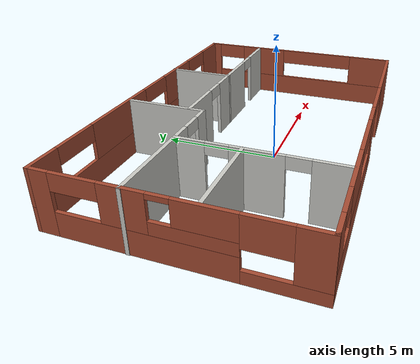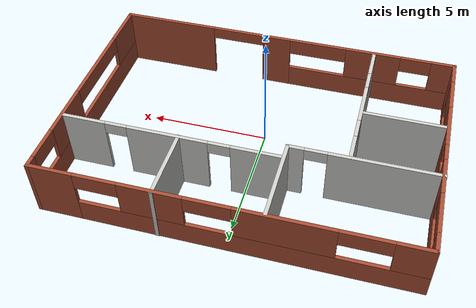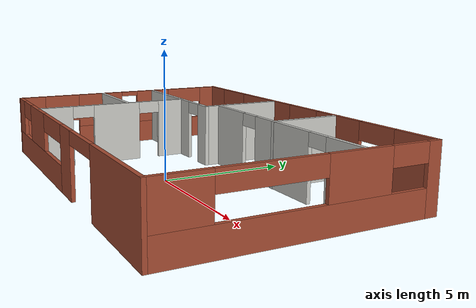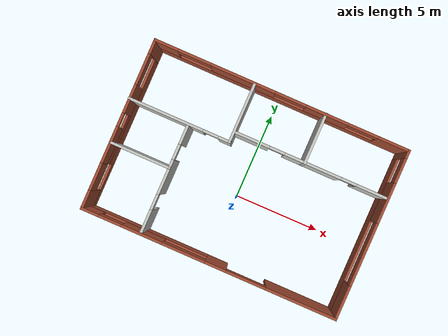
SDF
<?xml version='1.0'?>
<sdf version='1.7'>
  <model name='MyrobotHome'>
    <pose>0.063334 1.05672 0 0 -0 0</pose>
    <link name='Wall_12'>
      <pose>0.011552 -4.93661 0 0 -0 3.14159</pose>
      <visual name='Wall_12_Visual_0'>
        <pose>-5.40953 0 1.25 0 -0 0</pose>
        <geometry>
          <box>
            <size>4.18094 0.15 2.5</size>
          </box>
        </geometry>
        <material>
          <script>
            <uri>file://media/materials/scripts/gazebo.material</uri>
            <name>Gazebo/Bricks</name>
          </script>
          <ambient>1 1 1 1</ambient>
        </material>
        <meta>
          <layer>0</layer>
        </meta>
      </visual>
      <collision name='Wall_12_Collision_0'>
        <geometry>
          <box>
            <size>4.18094 0.15 2.5</size>
          </box>
        </geometry>
        <pose>-5.40953 0 1.25 0 -0 0</pose>
      </collision>
      <visual name='Wall_12_Visual_1'>
        <pose>-0.385262 0 1.25 0 -0 0</pose>
        <geometry>
          <box>
            <size>1.2517 0.15 2.5</size>
          </box>
        </geometry>
        <material>
          <script>
            <uri>file://media/materials/scripts/gazebo.material</uri>
            <name>Gazebo/Bricks</name>
          </script>
          <ambient>1 1 1 1</ambient>
        </material>
        <meta>
          <layer>0</layer>
        </meta>
      </visual>
      <collision name='Wall_12_Collision_1'>
        <geometry>
          <box>
            <size>1.2517 0.15 2.5</size>
          </box>
        </geometry>
        <pose>-0.385262 0 1.25 0 -0 0</pose>
      </collision>
      <visual name='Wall_12_Visual_2'>
        <pose>3.87029 0 0.5 0 -0 0</pose>
        <geometry>
          <box>
            <size>7.25941 0.15 1</size>
          </box>
        </geometry>
        <material>
          <script>
            <uri>file://media/materials/scripts/gazebo.material</uri>
            <name>Gazebo/Bricks</name>
          </script>
          <ambient>1 1 1 1</ambient>
        </material>
        <meta>
          <layer>0</layer>
        </meta>
      </visual>
      <collision name='Wall_12_Collision_2'>
        <geometry>
          <box>
            <size>7.25941 0.15 1</size>
          </box>
        </geometry>
        <pose>3.87029 0 0.5 0 -0 0</pose>
      </collision>
      <visual name='Wall_12_Visual_3'>
        <pose>3.93946 0 1.75 0 -0 0</pose>
        <geometry>
          <box>
            <size>2.37775 0.15 1.5</size>
          </box>
        </geometry>
        <material>
          <script>
            <uri>file://media/materials/scripts/gazebo.material</uri>
            <name>Gazebo/Bricks</name>
          </script>
          <ambient>1 1 1 1</ambient>
        </material>
        <meta>
          <layer>0</layer>
        </meta>
      </visual>
      <collision name='Wall_12_Collision_3'>
        <geometry>
          <box>
            <size>2.37775 0.15 1.5</size>
          </box>
        </geometry>
        <pose>3.93946 0 1.75 0 -0 0</pose>
      </collision>
      <visual name='Wall_12_Visual_4'>
        <pose>6.97567 0 1.75 0 -0 0</pose>
        <geometry>
          <box>
            <size>1.04867 0.15 1.5</size>
          </box>
        </geometry>
        <material>
          <script>
            <uri>file://media/materials/scripts/gazebo.material</uri>
            <name>Gazebo/Bricks</name>
          </script>
          <ambient>1 1 1 1</ambient>
        </material>
        <meta>
          <layer>0</layer>
        </meta>
      </visual>
      <collision name='Wall_12_Collision_4'>
        <geometry>
          <box>
            <size>1.04867 0.15 1.5</size>
          </box>
        </geometry>
        <pose>6.97567 0 1.75 0 -0 0</pose>
      </collision>
      <visual name='Wall_12_Visual_5'>
        <pose>1.49559 0 2.15 0 -0 0</pose>
        <geometry>
          <box>
            <size>2.51 0.15 0.7</size>
          </box>
        </geometry>
        <material>
          <script>
            <uri>file://media/materials/scripts/gazebo.material</uri>
            <name>Gazebo/Bricks</name>
          </script>
          <ambient>1 1 1 1</ambient>
        </material>
        <meta>
          <layer>0</layer>
        </meta>
      </visual>
      <collision name='Wall_12_Collision_5'>
        <geometry>
          <box>
            <size>2.51 0.15 0.7</size>
          </box>
        </geometry>
        <pose>1.49559 0 2.15 0 -0 0</pose>
      </collision>
      <visual name='Wall_12_Visual_6'>
        <pose>5.78983 0 2.15 0 -0 0</pose>
        <geometry>
          <box>
            <size>1.323 0.15 0.7</size>
          </box>
        </geometry>
        <material>
          <script>
            <uri>file://media/materials/scripts/gazebo.material</uri>
            <name>Gazebo/Bricks</name>
          </script>
          <ambient>1 1 1 1</ambient>
        </material>
        <meta>
          <layer>0</layer>
        </meta>
      </visual>
      <collision name='Wall_12_Collision_6'>
        <geometry>
          <box>
            <size>1.323 0.15 0.7</size>
          </box>
        </geometry>
        <pose>5.78983 0 2.15 0 -0 0</pose>
      </collision>
      <visual name='Wall_12_Visual_7'>
        <pose>-2.16508 0 2.25 0 -0 0</pose>
        <geometry>
          <box>
            <size>2.30795 0.15 0.5</size>
          </box>
        </geometry>
        <material>
          <script>
            <uri>file://media/materials/scripts/gazebo.material</uri>
            <name>Gazebo/Bricks</name>
          </script>
          <ambient>1 1 1 1</ambient>
        </material>
        <meta>
          <layer>0</layer>
        </meta>
      </visual>
      <collision name='Wall_12_Collision_7'>
        <geometry>
          <box>
            <size>2.30795 0.15 0.5</size>
          </box>
        </geometry>
        <pose>-2.16508 0 2.25 0 -0 0</pose>
      </collision>
    </link>
    <link name='Wall_14'>
      <pose>7.43655 -0.011605 0 0 -0 -1.5708</pose>
      <visual name='Wall_14_Visual_0'>
        <pose>-4.74176 0 1.25 0 -0 0</pose>
        <geometry>
          <box>
            <size>0.516491 0.15 2.5</size>
          </box>
        </geometry>
        <material>
          <script>
            <uri>file://media/materials/scripts/gazebo.material</uri>
            <name>Gazebo/Bricks</name>
          </script>
          <ambient>1 1 1 1</ambient>
        </material>
        <meta>
          <layer>0</layer>
        </meta>
      </visual>
      <collision name='Wall_14_Collision_0'>
        <geometry>
          <box>
            <size>0.516491 0.15 2.5</size>
          </box>
        </geometry>
        <pose>-4.74176 0 1.25 0 -0 0</pose>
      </collision>
      <visual name='Wall_14_Visual_1'>
        <pose>0.258245 0 0.5 0 -0 0</pose>
        <geometry>
          <box>
            <size>9.48351 0.15 1</size>
          </box>
        </geometry>
        <material>
          <script>
            <uri>file://media/materials/scripts/gazebo.material</uri>
            <name>Gazebo/Bricks</name>
          </script>
          <ambient>1 1 1 1</ambient>
        </material>
        <meta>
          <layer>0</layer>
        </meta>
      </visual>
      <collision name='Wall_14_Collision_1'>
        <geometry>
          <box>
            <size>9.48351 0.15 1</size>
          </box>
        </geometry>
        <pose>0.258245 0 0.5 0 -0 0</pose>
      </collision>
      <visual name='Wall_14_Visual_2'>
        <pose>-1.86065 0 1.75 0 -0 0</pose>
        <geometry>
          <box>
            <size>2.35771 0.15 1.5</size>
          </box>
        </geometry>
        <material>
          <script>
            <uri>file://media/materials/scripts/gazebo.material</uri>
            <name>Gazebo/Bricks</name>
          </script>
          <ambient>1 1 1 1</ambient>
        </material>
        <meta>
          <layer>0</layer>
        </meta>
      </visual>
      <collision name='Wall_14_Collision_2'>
        <geometry>
          <box>
            <size>2.35771 0.15 1.5</size>
          </box>
        </geometry>
        <pose>-1.86065 0 1.75 0 -0 0</pose>
      </collision>
      <visual name='Wall_14_Visual_3'>
        <pose>3.9871 0 1.75 0 -0 0</pose>
        <geometry>
          <box>
            <size>2.0258 0.15 1.5</size>
          </box>
        </geometry>
        <material>
          <script>
            <uri>file://media/materials/scripts/gazebo.material</uri>
            <name>Gazebo/Bricks</name>
          </script>
          <ambient>1 1 1 1</ambient>
        </material>
        <meta>
          <layer>0</layer>
        </meta>
      </visual>
      <collision name='Wall_14_Collision_3'>
        <geometry>
          <box>
            <size>2.0258 0.15 1.5</size>
          </box>
        </geometry>
        <pose>3.9871 0 1.75 0 -0 0</pose>
      </collision>
      <visual name='Wall_14_Visual_4'>
        <pose>-3.76151 0 2.15 0 -0 0</pose>
        <geometry>
          <box>
            <size>1.444 0.15 0.7</size>
          </box>
        </geometry>
        <material>
          <script>
            <uri>file://media/materials/scripts/gazebo.material</uri>
            <name>Gazebo/Bricks</name>
          </script>
          <ambient>1 1 1 1</ambient>
        </material>
        <meta>
          <layer>0</layer>
        </meta>
      </visual>
      <collision name='Wall_14_Collision_4'>
        <geometry>
          <box>
            <size>1.444 0.15 0.7</size>
          </box>
        </geometry>
        <pose>-3.76151 0 2.15 0 -0 0</pose>
      </collision>
      <visual name='Wall_14_Visual_5'>
        <pose>1.1462 0 2.15 0 -0 0</pose>
        <geometry>
          <box>
            <size>3.656 0.15 0.7</size>
          </box>
        </geometry>
        <material>
          <script>
            <uri>file://media/materials/scripts/gazebo.material</uri>
            <name>Gazebo/Bricks</name>
          </script>
          <ambient>1 1 1 1</ambient>
        </material>
        <meta>
          <layer>0</layer>
        </meta>
      </visual>
      <collision name='Wall_14_Collision_5'>
        <geometry>
          <box>
            <size>3.656 0.15 0.7</size>
          </box>
        </geometry>
        <pose>1.1462 0 2.15 0 -0 0</pose>
      </collision>
    </link>
    <link name='Wall_17'>
      <collision name='Wall_17_Collision'>
        <geometry>
          <box>
            <size>3.5 0.15 2.5</size>
          </box>
        </geometry>
        <pose>0 0 1.25 0 -0 0</pose>
      </collision>
      <visual name='Wall_17_Visual'>
        <pose>0 0 1.25 0 -0 0</pose>
        <geometry>
          <box>
            <size>3.5 0.15 2.5</size>
          </box>
        </geometry>
        <material>
          <script>
            <uri>file://media/materials/scripts/gazebo.material</uri>
            <name>Gazebo/CeilingTiled</name>
          </script>
          <ambient>1 1 1 1</ambient>
        </material>
        <meta>
          <layer>0</layer>
        </meta>
      </visual>
      <pose>-1.58655 3.16783 0 0 -0 -1.5708</pose>
    </link>
    <link name='Wall_19'>
      <pose>-4.51155 1.49283 0 0 -0 3.14159</pose>
      <visual name='Wall_19_Visual_0'>
        <pose>-2.64038 0 1.25 0 -0 0</pose>
        <geometry>
          <box>
            <size>0.719238 0.15 2.5</size>
          </box>
        </geometry>
        <material>
          <script>
            <uri>file://media/materials/scripts/gazebo.material</uri>
            <name>Gazebo/CeilingTiled</name>
          </script>
          <ambient>1 1 1 1</ambient>
        </material>
        <meta>
          <layer>0</layer>
        </meta>
      </visual>
      <collision name='Wall_19_Collision_0'>
        <geometry>
          <box>
            <size>0.719238 0.15 2.5</size>
          </box>
        </geometry>
        <pose>-2.64038 0 1.25 0 -0 0</pose>
      </collision>
      <visual name='Wall_19_Visual_1'>
        <pose>0.809619 0 1.25 0 -0 0</pose>
        <geometry>
          <box>
            <size>4.38076 0.15 2.5</size>
          </box>
        </geometry>
        <material>
          <script>
            <uri>file://media/materials/scripts/gazebo.material</uri>
            <name>Gazebo/CeilingTiled</name>
          </script>
          <ambient>1 1 1 1</ambient>
        </material>
        <meta>
          <layer>0</layer>
        </meta>
      </visual>
      <collision name='Wall_19_Collision_1'>
        <geometry>
          <box>
            <size>4.38076 0.15 2.5</size>
          </box>
        </geometry>
        <pose>0.809619 0 1.25 0 -0 0</pose>
      </collision>
      <visual name='Wall_19_Visual_2'>
        <pose>-1.83076 0 2.25 0 -0 0</pose>
        <geometry>
          <box>
            <size>0.9 0.15 0.5</size>
          </box>
        </geometry>
        <material>
          <script>
            <uri>file://media/materials/scripts/gazebo.material</uri>
            <name>Gazebo/CeilingTiled</name>
          </script>
          <ambient>1 1 1 1</ambient>
        </material>
        <meta>
          <layer>0</layer>
        </meta>
      </visual>
      <collision name='Wall_19_Collision_2'>
        <geometry>
          <box>
            <size>0.9 0.15 0.5</size>
          </box>
        </geometry>
        <pose>-1.83076 0 2.25 0 -0 0</pose>
      </collision>
    </link>
    <link name='Wall_2'>
      <pose>0.011552 4.9134 0 0 -0 3.14159</pose>
      <visual name='Wall_2_Visual_0'>
        <pose>-6.56615 0 1.25 0 -0 0</pose>
        <geometry>
          <box>
            <size>1.86771 0.15 2.5</size>
          </box>
        </geometry>
        <material>
          <script>
            <uri>file://media/materials/scripts/gazebo.material</uri>
            <name>Gazebo/Bricks</name>
          </script>
          <ambient>1 1 1 1</ambient>
        </material>
        <meta>
          <layer>0</layer>
        </meta>
      </visual>
      <collision name='Wall_2_Collision_0'>
        <geometry>
          <box>
            <size>1.86771 0.15 2.5</size>
          </box>
        </geometry>
        <pose>-6.56615 0 1.25 0 -0 0</pose>
      </collision>
      <visual name='Wall_2_Visual_1'>
        <pose>0.933854 0 0.5 0 -0 0</pose>
        <geometry>
          <box>
            <size>13.1323 0.15 1</size>
          </box>
        </geometry>
        <material>
          <script>
            <uri>file://media/materials/scripts/gazebo.material</uri>
            <name>Gazebo/Bricks</name>
          </script>
          <ambient>1 1 1 1</ambient>
        </material>
        <meta>
          <layer>0</layer>
        </meta>
      </visual>
      <collision name='Wall_2_Collision_1'>
        <geometry>
          <box>
            <size>13.1323 0.15 1</size>
          </box>
        </geometry>
        <pose>0.933854 0 0.5 0 -0 0</pose>
      </collision>
      <visual name='Wall_2_Visual_2'>
        <pose>-2.658 0 1.75 0 -0 0</pose>
        <geometry>
          <box>
            <size>2.49858 0.15 1.5</size>
          </box>
        </geometry>
        <material>
          <script>
            <uri>file://media/materials/scripts/gazebo.material</uri>
            <name>Gazebo/Bricks</name>
          </script>
          <ambient>1 1 1 1</ambient>
        </material>
        <meta>
          <layer>0</layer>
        </meta>
      </visual>
      <collision name='Wall_2_Collision_2'>
        <geometry>
          <box>
            <size>2.49858 0.15 1.5</size>
          </box>
        </geometry>
        <pose>-2.658 0 1.75 0 -0 0</pose>
      </collision>
      <visual name='Wall_2_Visual_3'>
        <pose>2.28018 0 1.75 0 -0 0</pose>
        <geometry>
          <box>
            <size>3.7658 0.15 1.5</size>
          </box>
        </geometry>
        <material>
          <script>
            <uri>file://media/materials/scripts/gazebo.material</uri>
            <name>Gazebo/Bricks</name>
          </script>
          <ambient>1 1 1 1</ambient>
        </material>
        <meta>
          <layer>0</layer>
        </meta>
      </visual>
      <collision name='Wall_2_Collision_3'>
        <geometry>
          <box>
            <size>3.7658 0.15 1.5</size>
          </box>
        </geometry>
        <pose>2.28018 0 1.75 0 -0 0</pose>
      </collision>
      <visual name='Wall_2_Visual_4'>
        <pose>6.79454 0 1.75 0 -0 0</pose>
        <geometry>
          <box>
            <size>1.41091 0.15 1.5</size>
          </box>
        </geometry>
        <material>
          <script>
            <uri>file://media/materials/scripts/gazebo.material</uri>
            <name>Gazebo/Bricks</name>
          </script>
          <ambient>1 1 1 1</ambient>
        </material>
        <meta>
          <layer>0</layer>
        </meta>
      </visual>
      <collision name='Wall_2_Collision_4'>
        <geometry>
          <box>
            <size>1.41091 0.15 1.5</size>
          </box>
        </geometry>
        <pose>6.79454 0 1.75 0 -0 0</pose>
      </collision>
      <visual name='Wall_2_Visual_5'>
        <pose>-4.76979 0 2.15 0 -0 0</pose>
        <geometry>
          <box>
            <size>1.725 0.15 0.7</size>
          </box>
        </geometry>
        <material>
          <script>
            <uri>file://media/materials/scripts/gazebo.material</uri>
            <name>Gazebo/Bricks</name>
          </script>
          <ambient>1 1 1 1</ambient>
        </material>
        <meta>
          <layer>0</layer>
        </meta>
      </visual>
      <collision name='Wall_2_Collision_5'>
        <geometry>
          <box>
            <size>1.725 0.15 0.7</size>
          </box>
        </geometry>
        <pose>-4.76979 0 2.15 0 -0 0</pose>
      </collision>
      <visual name='Wall_2_Visual_6'>
        <pose>-0.505715 0 2.15 0 -0 0</pose>
        <geometry>
          <box>
            <size>1.806 0.15 0.7</size>
          </box>
        </geometry>
        <material>
          <script>
            <uri>file://media/materials/scripts/gazebo.material</uri>
            <name>Gazebo/Bricks</name>
          </script>
          <ambient>1 1 1 1</ambient>
        </material>
        <meta>
          <layer>0</layer>
        </meta>
      </visual>
      <collision name='Wall_2_Collision_6'>
        <geometry>
          <box>
            <size>1.806 0.15 0.7</size>
          </box>
        </geometry>
        <pose>-0.505715 0 2.15 0 -0 0</pose>
      </collision>
      <visual name='Wall_2_Visual_7'>
        <pose>5.12608 0 2.15 0 -0 0</pose>
        <geometry>
          <box>
            <size>1.926 0.15 0.7</size>
          </box>
        </geometry>
        <material>
          <script>
            <uri>file://media/materials/scripts/gazebo.material</uri>
            <name>Gazebo/Bricks</name>
          </script>
          <ambient>1 1 1 1</ambient>
        </material>
        <meta>
          <layer>0</layer>
        </meta>
      </visual>
      <collision name='Wall_2_Collision_7'>
        <geometry>
          <box>
            <size>1.926 0.15 0.7</size>
          </box>
        </geometry>
        <pose>5.12608 0 2.15 0 -0 0</pose>
      </collision>
    </link>
    <link name='Wall_21'>
      <collision name='Wall_21_Collision'>
        <geometry>
          <box>
            <size>3 0.15 2.5</size>
          </box>
        </geometry>
        <pose>0 0 1.25 0 -0 0</pose>
      </collision>
      <visual name='Wall_21_Visual'>
        <pose>0 0 1.25 0 -0 0</pose>
        <geometry>
          <box>
            <size>3 0.15 2.5</size>
          </box>
        </geometry>
        <material>
          <script>
            <uri>file://media/materials/scripts/gazebo.material</uri>
            <name>Gazebo/CeilingTiled</name>
          </script>
          <ambient>1 1 1 1</ambient>
        </material>
        <meta>
          <layer>0</layer>
        </meta>
      </visual>
      <pose>2.56885 3.5116 0 0 -0 -1.5708</pose>
    </link>
    <link name='Wall_24'>
      <pose>2.89068 2.10059 0 0 -0 0</pose>
      <visual name='Wall_24_Visual_0'>
        <pose>-3.45052 0 1.25 0 -0 0</pose>
        <geometry>
          <box>
            <size>2.09897 0.15 2.5</size>
          </box>
        </geometry>
        <material>
          <script>
            <uri>file://media/materials/scripts/gazebo.material</uri>
            <name>Gazebo/CeilingTiled</name>
          </script>
          <ambient>1 1 1 1</ambient>
        </material>
        <meta>
          <layer>0</layer>
        </meta>
      </visual>
      <collision name='Wall_24_Collision_0'>
        <geometry>
          <box>
            <size>2.09897 0.15 2.5</size>
          </box>
        </geometry>
        <pose>-3.45052 0 1.25 0 -0 0</pose>
      </collision>
      <visual name='Wall_24_Visual_1'>
        <pose>0.150838 0 1.25 0 -0 0</pose>
        <geometry>
          <box>
            <size>3.30374 0.15 2.5</size>
          </box>
        </geometry>
        <material>
          <script>
            <uri>file://media/materials/scripts/gazebo.material</uri>
            <name>Gazebo/CeilingTiled</name>
          </script>
          <ambient>1 1 1 1</ambient>
        </material>
        <meta>
          <layer>0</layer>
        </meta>
      </visual>
      <collision name='Wall_24_Collision_1'>
        <geometry>
          <box>
            <size>3.30374 0.15 2.5</size>
          </box>
        </geometry>
        <pose>0.150838 0 1.25 0 -0 0</pose>
      </collision>
      <visual name='Wall_24_Visual_2'>
        <pose>3.60135 0 1.25 0 -0 0</pose>
        <geometry>
          <box>
            <size>1.79729 0.15 2.5</size>
          </box>
        </geometry>
        <material>
          <script>
            <uri>file://media/materials/scripts/gazebo.material</uri>
            <name>Gazebo/CeilingTiled</name>
          </script>
          <ambient>1 1 1 1</ambient>
        </material>
        <meta>
          <layer>0</layer>
        </meta>
      </visual>
      <collision name='Wall_24_Collision_2'>
        <geometry>
          <box>
            <size>1.79729 0.15 2.5</size>
          </box>
        </geometry>
        <pose>3.60135 0 1.25 0 -0 0</pose>
      </collision>
      <visual name='Wall_24_Visual_3'>
        <pose>-1.95103 0 2.25 0 -0 0</pose>
        <geometry>
          <box>
            <size>0.9 0.15 0.5</size>
          </box>
        </geometry>
        <material>
          <script>
            <uri>file://media/materials/scripts/gazebo.material</uri>
            <name>Gazebo/CeilingTiled</name>
          </script>
          <ambient>1 1 1 1</ambient>
        </material>
        <meta>
          <layer>0</layer>
        </meta>
      </visual>
      <collision name='Wall_24_Collision_3'>
        <geometry>
          <box>
            <size>0.9 0.15 0.5</size>
          </box>
        </geometry>
        <pose>-1.95103 0 2.25 0 -0 0</pose>
      </collision>
      <visual name='Wall_24_Visual_4'>
        <pose>2.25271 0 2.25 0 -0 0</pose>
        <geometry>
          <box>
            <size>0.9 0.15 0.5</size>
          </box>
        </geometry>
        <material>
          <script>
            <uri>file://media/materials/scripts/gazebo.material</uri>
            <name>Gazebo/CeilingTiled</name>
          </script>
          <ambient>1 1 1 1</ambient>
        </material>
        <meta>
          <layer>0</layer>
        </meta>
      </visual>
      <collision name='Wall_24_Collision_4'>
        <geometry>
          <box>
            <size>0.9 0.15 0.5</size>
          </box>
        </geometry>
        <pose>2.25271 0 2.25 0 -0 0</pose>
      </collision>
    </link>
    <link name='Wall_3'>
      <pose>-7.41345 -0.011605 0 0 -0 -1.5708</pose>
      <visual name='Wall_3_Visual_0'>
        <pose>-4.56075 0 1.25 0 -0 0</pose>
        <geometry>
          <box>
            <size>0.8785 0.15 2.5</size>
          </box>
        </geometry>
        <material>
          <script>
            <uri>file://media/materials/scripts/gazebo.material</uri>
            <name>Gazebo/Bricks</name>
          </script>
          <ambient>1 1 1 1</ambient>
        </material>
        <meta>
          <layer>0</layer>
        </meta>
      </visual>
      <collision name='Wall_3_Collision_0'>
        <geometry>
          <box>
            <size>0.8785 0.15 2.5</size>
          </box>
        </geometry>
        <pose>-4.56075 0 1.25 0 -0 0</pose>
      </collision>
      <visual name='Wall_3_Visual_1'>
        <pose>-0.923333 0 0.5 0 -0 0</pose>
        <geometry>
          <box>
            <size>6.39633 0.15 1</size>
          </box>
        </geometry>
        <material>
          <script>
            <uri>file://media/materials/scripts/gazebo.material</uri>
            <name>Gazebo/Bricks</name>
          </script>
          <ambient>1 1 1 1</ambient>
        </material>
        <meta>
          <layer>0</layer>
        </meta>
      </visual>
      <collision name='Wall_3_Collision_1'>
        <geometry>
          <box>
            <size>6.39633 0.15 1</size>
          </box>
        </geometry>
        <pose>-0.923333 0 0.5 0 -0 0</pose>
      </collision>
      <visual name='Wall_3_Visual_2'>
        <pose>3.63742 0 0.25 0 -0 0</pose>
        <geometry>
          <box>
            <size>2.72517 0.15 0.5</size>
          </box>
        </geometry>
        <material>
          <script>
            <uri>file://media/materials/scripts/gazebo.material</uri>
            <name>Gazebo/Bricks</name>
          </script>
          <ambient>1 1 1 1</ambient>
        </material>
        <meta>
          <layer>0</layer>
        </meta>
      </visual>
      <collision name='Wall_3_Collision_2'>
        <geometry>
          <box>
            <size>2.72517 0.15 0.5</size>
          </box>
        </geometry>
        <pose>3.63742 0 0.25 0 -0 0</pose>
      </collision>
      <visual name='Wall_3_Visual_3'>
        <pose>4.42963 0 1.5 0 -0 0</pose>
        <geometry>
          <box>
            <size>1.14074 0.15 2</size>
          </box>
        </geometry>
        <material>
          <script>
            <uri>file://media/materials/scripts/gazebo.material</uri>
            <name>Gazebo/Bricks</name>
          </script>
          <ambient>1 1 1 1</ambient>
        </material>
        <meta>
          <layer>0</layer>
        </meta>
      </visual>
      <collision name='Wall_3_Collision_3'>
        <geometry>
          <box>
            <size>1.14074 0.15 2</size>
          </box>
        </geometry>
        <pose>4.42963 0 1.5 0 -0 0</pose>
      </collision>
      <visual name='Wall_3_Visual_4'>
        <pose>-1.49862 0 1.75 0 -0 0</pose>
        <geometry>
          <box>
            <size>1.67375 0.15 1.5</size>
          </box>
        </geometry>
        <material>
          <script>
            <uri>file://media/materials/scripts/gazebo.material</uri>
            <name>Gazebo/Bricks</name>
          </script>
          <ambient>1 1 1 1</ambient>
        </material>
        <meta>
          <layer>0</layer>
        </meta>
      </visual>
      <collision name='Wall_3_Collision_4'>
        <geometry>
          <box>
            <size>1.67375 0.15 1.5</size>
          </box>
        </geometry>
        <pose>-1.49862 0 1.75 0 -0 0</pose>
      </collision>
      <visual name='Wall_3_Visual_5'>
        <pose>0.806543 0 1.25 0 -0 0</pose>
        <geometry>
          <box>
            <size>2.93658 0.15 0.5</size>
          </box>
        </geometry>
        <material>
          <script>
            <uri>file://media/materials/scripts/gazebo.material</uri>
            <name>Gazebo/Bricks</name>
          </script>
          <ambient>1 1 1 1</ambient>
        </material>
        <meta>
          <layer>0</layer>
        </meta>
      </visual>
      <collision name='Wall_3_Collision_5'>
        <geometry>
          <box>
            <size>2.93658 0.15 0.5</size>
          </box>
        </geometry>
        <pose>0.806543 0 1.25 0 -0 0</pose>
      </collision>
      <visual name='Wall_3_Visual_6'>
        <pose>3.06705 0 1.9 0 -0 0</pose>
        <geometry>
          <box>
            <size>1.58443 0.15 1.2</size>
          </box>
        </geometry>
        <material>
          <script>
            <uri>file://media/materials/scripts/gazebo.material</uri>
            <name>Gazebo/Bricks</name>
          </script>
          <ambient>1 1 1 1</ambient>
        </material>
        <meta>
          <layer>0</layer>
        </meta>
      </visual>
      <collision name='Wall_3_Collision_6'>
        <geometry>
          <box>
            <size>1.58443 0.15 1.2</size>
          </box>
        </geometry>
        <pose>3.06705 0 1.9 0 -0 0</pose>
      </collision>
      <visual name='Wall_3_Visual_7'>
        <pose>1.20654 0 2 0 -0 0</pose>
        <geometry>
          <box>
            <size>2.13658 0.15 1</size>
          </box>
        </geometry>
        <material>
          <script>
            <uri>file://media/materials/scripts/gazebo.material</uri>
            <name>Gazebo/Bricks</name>
          </script>
          <ambient>1 1 1 1</ambient>
        </material>
        <meta>
          <layer>0</layer>
        </meta>
      </visual>
      <collision name='Wall_3_Collision_7'>
        <geometry>
          <box>
            <size>2.13658 0.15 1</size>
          </box>
        </geometry>
        <pose>1.20654 0 2 0 -0 0</pose>
      </collision>
      <visual name='Wall_3_Visual_8'>
        <pose>-3.2285 0 2.15 0 -0 0</pose>
        <geometry>
          <box>
            <size>1.786 0.15 0.7</size>
          </box>
        </geometry>
        <material>
          <script>
            <uri>file://media/materials/scripts/gazebo.material</uri>
            <name>Gazebo/Bricks</name>
          </script>
          <ambient>1 1 1 1</ambient>
        </material>
        <meta>
          <layer>0</layer>
        </meta>
      </visual>
      <collision name='Wall_3_Collision_8'>
        <geometry>
          <box>
            <size>1.786 0.15 0.7</size>
          </box>
        </geometry>
        <pose>-3.2285 0 2.15 0 -0 0</pose>
      </collision>
      <visual name='Wall_3_Visual_9'>
        <pose>-0.261748 0 2.4 0 -0 0</pose>
        <geometry>
          <box>
            <size>0.8 0.15 0.2</size>
          </box>
        </geometry>
        <material>
          <script>
            <uri>file://media/materials/scripts/gazebo.material</uri>
            <name>Gazebo/Bricks</name>
          </script>
          <ambient>1 1 1 1</ambient>
        </material>
        <meta>
          <layer>0</layer>
        </meta>
      </visual>
      <collision name='Wall_3_Collision_9'>
        <geometry>
          <box>
            <size>0.8 0.15 0.2</size>
          </box>
        </geometry>
        <pose>-0.261748 0 2.4 0 -0 0</pose>
      </collision>
    </link>
    <link name='Wall_5'>
      <pose>-3.98253 -1.68978 0 0 -0 1.5708</pose>
      <visual name='Wall_5_Visual_0'>
        <pose>-2.53941 0 1.25 0 -0 0</pose>
        <geometry>
          <box>
            <size>1.42119 0.15 2.5</size>
          </box>
        </geometry>
        <material>
          <script>
            <uri>file://media/materials/scripts/gazebo.material</uri>
            <name>Gazebo/CeilingTiled</name>
          </script>
          <ambient>1 1 1 1</ambient>
        </material>
        <meta>
          <layer>0</layer>
        </meta>
      </visual>
      <collision name='Wall_5_Collision_0'>
        <geometry>
          <box>
            <size>1.42119 0.15 2.5</size>
          </box>
        </geometry>
        <pose>-2.53941 0 1.25 0 -0 0</pose>
      </collision>
      <visual name='Wall_5_Visual_1'>
        <pose>0.089477 0 1.25 0 -0 0</pose>
        <geometry>
          <box>
            <size>2.03658 0.15 2.5</size>
          </box>
        </geometry>
        <material>
          <script>
            <uri>file://media/materials/scripts/gazebo.material</uri>
            <name>Gazebo/CeilingTiled</name>
          </script>
          <ambient>1 1 1 1</ambient>
        </material>
        <meta>
          <layer>0</layer>
        </meta>
      </visual>
      <collision name='Wall_5_Collision_1'>
        <geometry>
          <box>
            <size>2.03658 0.15 2.5</size>
          </box>
        </geometry>
        <pose>0.089477 0 1.25 0 -0 0</pose>
      </collision>
      <visual name='Wall_5_Visual_2'>
        <pose>2.62888 0 1.25 0 -0 0</pose>
        <geometry>
          <box>
            <size>1.24223 0.15 2.5</size>
          </box>
        </geometry>
        <material>
          <script>
            <uri>file://media/materials/scripts/gazebo.material</uri>
            <name>Gazebo/CeilingTiled</name>
          </script>
          <ambient>1 1 1 1</ambient>
        </material>
        <meta>
          <layer>0</layer>
        </meta>
      </visual>
      <collision name='Wall_5_Collision_2'>
        <geometry>
          <box>
            <size>1.24223 0.15 2.5</size>
          </box>
        </geometry>
        <pose>2.62888 0 1.25 0 -0 0</pose>
      </collision>
      <visual name='Wall_5_Visual_3'>
        <pose>-1.37881 0 2.25 0 -0 0</pose>
        <geometry>
          <box>
            <size>0.9 0.15 0.5</size>
          </box>
        </geometry>
        <material>
          <script>
            <uri>file://media/materials/scripts/gazebo.material</uri>
            <name>Gazebo/CeilingTiled</name>
          </script>
          <ambient>1 1 1 1</ambient>
        </material>
        <meta>
          <layer>0</layer>
        </meta>
      </visual>
      <collision name='Wall_5_Collision_3'>
        <geometry>
          <box>
            <size>0.9 0.15 0.5</size>
          </box>
        </geometry>
        <pose>-1.37881 0 2.25 0 -0 0</pose>
      </collision>
      <visual name='Wall_5_Visual_4'>
        <pose>1.55777 0 2.25 0 -0 0</pose>
        <geometry>
          <box>
            <size>0.9 0.15 0.5</size>
          </box>
        </geometry>
        <material>
          <script>
            <uri>file://media/materials/scripts/gazebo.material</uri>
            <name>Gazebo/CeilingTiled</name>
          </script>
          <ambient>1 1 1 1</ambient>
        </material>
        <meta>
          <layer>0</layer>
        </meta>
      </visual>
      <collision name='Wall_5_Collision_4'>
        <geometry>
          <box>
            <size>0.9 0.15 0.5</size>
          </box>
        </geometry>
        <pose>1.55777 0 2.25 0 -0 0</pose>
      </collision>
    </link>
    <link name='Wall_9'>
      <collision name='Wall_9_Collision'>
        <geometry>
          <box>
            <size>3.5 0.15 2.5</size>
          </box>
        </geometry>
        <pose>0 0 1.25 0 -0 0</pose>
      </collision>
      <visual name='Wall_9_Visual'>
        <pose>0 0 1.25 0 -0 0</pose>
        <geometry>
          <box>
            <size>3.5 0.15 2.5</size>
          </box>
        </geometry>
        <material>
          <script>
            <uri>file://media/materials/scripts/gazebo.material</uri>
            <name>Gazebo/CeilingTiled</name>
          </script>
          <ambient>1 1 1 1</ambient>
        </material>
        <meta>
          <layer>0</layer>
        </meta>
      </visual>
      <pose>-5.6665 -1.07172 0 0 -0 0</pose>
    </link>
    <static>1</static>
  </model>
</sdf>
